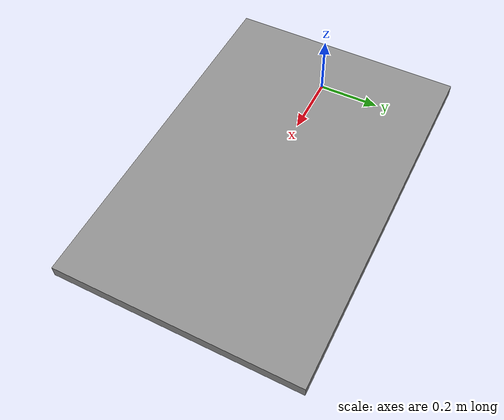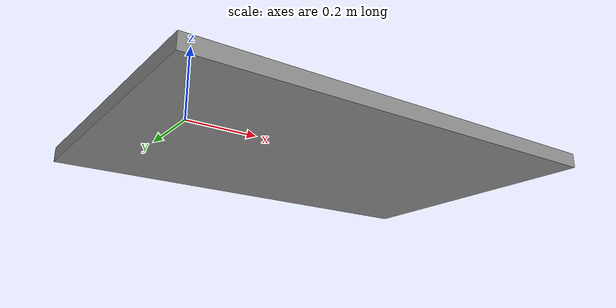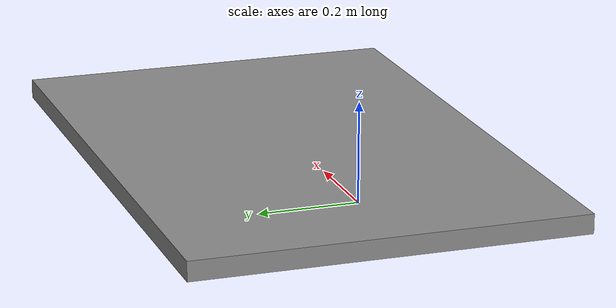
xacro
<?xml version="1.0"?>
<robot xmlns:xacro="http://www.ros.org/wiki/xacro" name="lerobot_environment_description">
  <xacro:include filename="$(find lerobot_environment_description)/urdf/table.xacro"/>
  <link name="world"/>
  <xacro:table prefix="" width="1.2" depth="0.8" thickness="0.04"/>
  <joint name="world_to_table" type="fixed">
    <parent link="world"/>
    <child link="table_link"/>
    <origin xyz="0.4 0.0 -0.02" rpy="0 0 0"/>
  </joint>
</robot>

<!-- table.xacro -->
<robot xmlns:xacro="http://www.ros.org/wiki/xacro">
  <xacro:macro name="table" params="prefix width depth thickness">
    <link name="${prefix}table_link">
      <visual>
        <geometry>
          <box size="${width} ${depth} ${thickness}"/>
        </geometry>
        <material name="table_gray">
          <color rgba="0.55 0.55 0.55 1.0"/>
        </material>
      </visual>
      <collision>
        <geometry>
          <box size="${width} ${depth} ${thickness}"/>
        </geometry>
      </collision>
    </link>
  </xacro:macro>
</robot>
